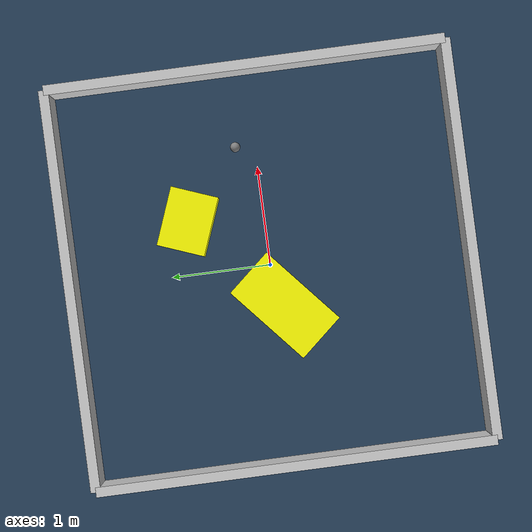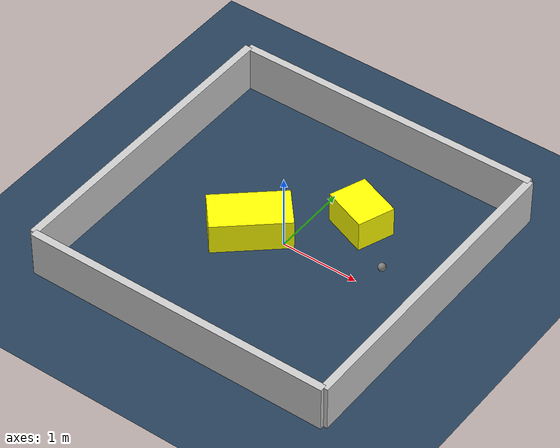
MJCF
<?xml version="1.0" ?>
<mujoco model="generated_environment">
  <option timestep="0.01" integrator="RK4" cone="elliptic"/>
  <default>
    <geom density="1"/>
  </default>
  <asset>
    <texture builtin="gradient" height="3072" rgb1="0.3 0.5 0.7" rgb2="0 0 0" type="skybox" width="512"/>
    <texture builtin="checker" height="300" mark="edge" markrgb="0.8 0.8 0.8" name="groundplane" rgb1="0.2 0.3 0.4" rgb2="0.1 0.2 0.3" type="2d" width="300"/>
    <material name="groundplane" reflectance="0.2" texrepeat="5 5" texture="groundplane" texuniform="true"/>
    <material name="robot" rgba="0.0 1.0 0.0 1"/>
  </asset>
  <worldbody>
    <light dir="0 0 -1" directional="true" pos="0 0 1.5"/>
    <geom condim="4" friction="1.0 0.005 0.001" material="groundplane" name="floor" size="0 0 0.05" type="plane"/>
    <body name="walls">
      <geom name="wall_1" condim="4" pos="-2.0 0.0 0.3" rgba="0.800000011920929 0.800000011920929 0.800000011920929 1.0" size="0.05 2.0 0.3" type="box"/>
      <geom name="wall_2" condim="4" pos="2.0 0.0 0.3" rgba="0.800000011920929 0.800000011920929 0.800000011920929 1.0" size="0.05 2.0 0.3" type="box"/>
      <geom name="wall_3" condim="4" pos="0.0 -2.0 0.3" rgba="0.800000011920929 0.800000011920929 0.800000011920929 1.0" size="2.0 0.05 0.3" type="box"/>
      <geom name="wall_4" condim="4" pos="0.0 2.0 0.3" rgba="0.800000011920929 0.800000011920929 0.800000011920929 1.0" size="2.0 0.05 0.3" type="box"/>
    </body>
    <body name="robot">
      <joint name="joint_x" type="slide" pos="0 0 0" axis="1 0 0"/>
      <joint name="joint_y" type="slide" pos="0 0 0" axis="0 1 0"/>
      <geom name="robot" type="sphere" pos="1.2227045733327704 0.1960875418894965 0.2" size="0.05" mass="5." friction="1.0 0.005 0.0001" condim="4"/>
      <site name="sensor_ball"/>
    </body>
    <body name="obstacle_1_movable">
      <geom name="obstacle_1_movable" condim="4" pos="-0.4161473093530039 -0.09186991245694798 0.2" euler="0 0 40.86135266318348" friction="1.0 0.005 0.001" rgba="1 1 0 1" size="0.48785524366012634 0.27182098477849737 0.2" type="box" mass="0.1"/>
      <joint type="free"/>
    </body>
    <body name="obstacle_2_movable">
      <geom name="obstacle_2_movable" condim="4" pos="0.5399467625955012 0.7619590590205108 0.2" euler="0 0 339.0573300286697" friction="1.0 0.005 0.001" rgba="1 1 0 1" size="0.3019560944145352 0.24294724609491836 0.2" type="box" mass="0.1"/>
      <joint type="free"/>
    </body>
  </worldbody>
  <actuator>
    <motor name="actuator_x" joint="joint_x" gear="1" ctrlrange="-1 1"/>
    <motor name="actuator_y" joint="joint_y" gear="1" ctrlrange="-1 1"/>
  </actuator>
</mujoco>
